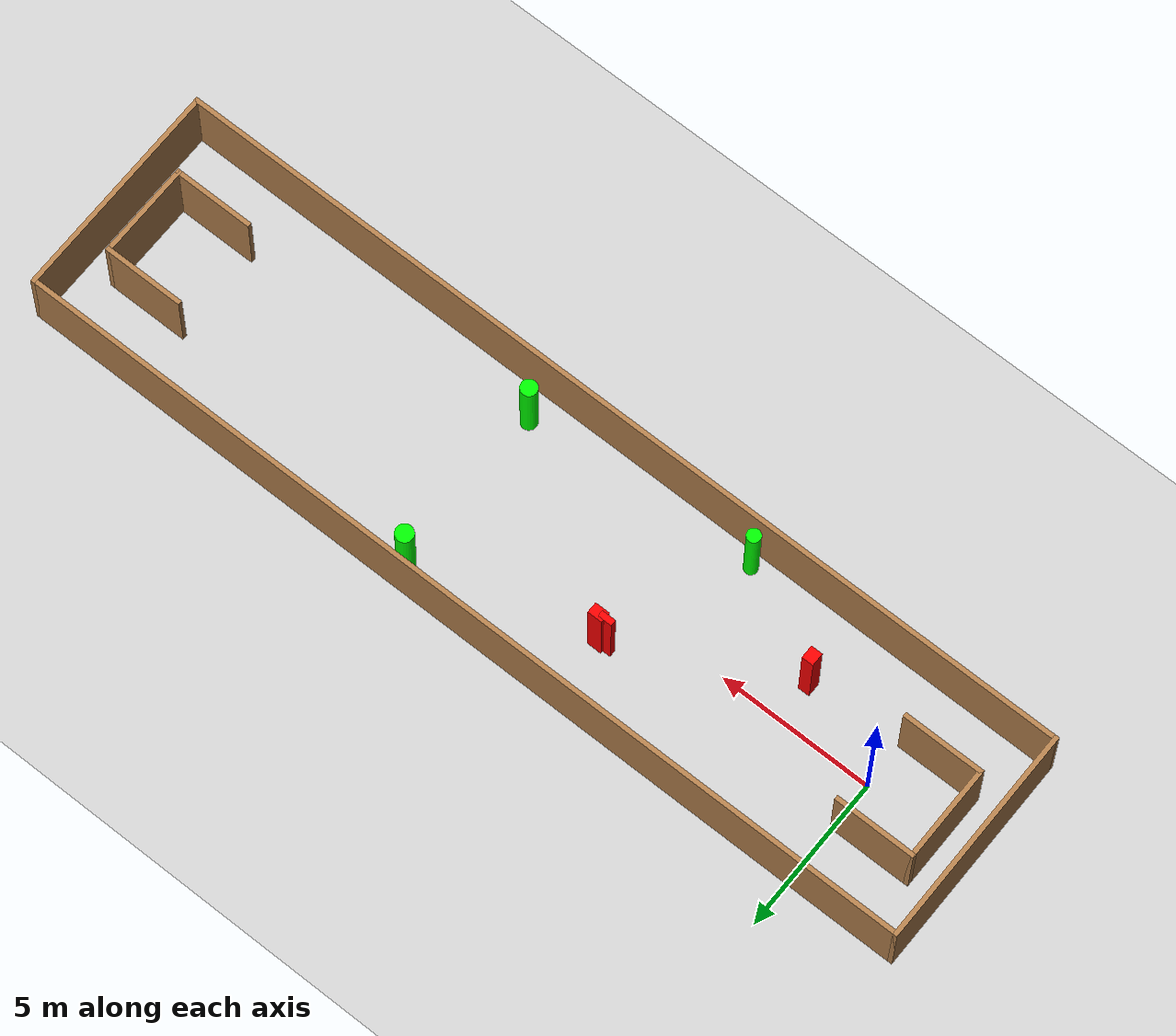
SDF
<sdf version="1.7">
 <world name="default">
  <light name="sun" type="directional">
   <pose>0 0 10 0 -0 0</pose>
   <diffuse>0.8 0.8 0.8 1</diffuse>
   <specular>0.2 0.2 0.2 1</specular>
   <attenuation>
    <range>1000</range>
    <constant>0.9</constant>
    <linear>0.01</linear>
    <quadratic>0.001</quadratic>
   </attenuation>
   <direction>-0.5 0.1 -0.9</direction>
   <spot><inner_angle>0</inner_angle><outer_angle>0</outer_angle><falloff>0</falloff></spot>
  </light>
  <model name="ground_plane">
   <static>1</static>
   <link name="link">
    <collision name="collision">
     <geometry><plane><normal>0 0 1</normal><size>100 100</size></plane></geometry>
     <surface>
      <contact><collide_bitmask>65535</collide_bitmask></contact>
      <friction><ode><mu>100</mu><mu2>50</mu2></ode></friction>
     </surface>
    </collision>
    <visual name="visual">
     <cast_shadows>0</cast_shadows>
     <geometry><plane><normal>0 0 1</normal><size>100 100</size></plane></geometry>
     <material>
      <script><uri>file://media/materials/scripts/gazebo.material</uri><name>Gazebo/Grey</name></script>
     </material>
    </visual>
   </link>
  </model>
  <gravity>0 0 -9.8</gravity>
  <magnetic_field>6e-06 2.3e-05 -4.2e-05</magnetic_field>
  <atmosphere type="adiabatic"/>
  <physics type="ode">
   <max_step_size>0.001</max_step_size>
   <real_time_factor>1</real_time_factor>
   <real_time_update_rate>1000</real_time_update_rate>
  </physics>
  <scene><ambient>0.4 0.4 0.4 1</ambient><background>0.7 0.7 0.7 1</background><shadows>1</shadows></scene>
  <spherical_coordinates>
   <surface_model>EARTH_WGS84</surface_model>
   <latitude_deg>0</latitude_deg>
   <longitude_deg>0</longitude_deg>
   <elevation>0</elevation>
   <heading_deg>0</heading_deg>
  </spherical_coordinates>
  <model name="my_base_walls">
   <link name="Wall_0">
    <collision name="Wall_0_Collision">
     <geometry><box><size>7.15 0.15 2.5</size></box></geometry>
     <pose>0 0 1.25 0 -0 0</pose>
    </collision>
    <visual name="Wall_0_Visual">
     <pose>0 0 1.25 0 -0 0</pose>
     <geometry><box><size>7.15 0.15 2.5</size></box></geometry>
     <material>
      <script><uri>file://media/materials/scripts/gazebo.material</uri><name>Gazebo/Wood</name></script>
      <ambient>1 1 1 1</ambient>
     </material>
     <meta><layer>0</layer></meta>
    </visual>
    <pose>-15 0 0 0 -0 1.5708</pose>
   </link>
   <link name="Wall_10">
    <collision name="Wall_10_Collision">
     <geometry><box><size>2.65 0.15 2.5</size></box></geometry>
     <pose>0 0 1.25 0 -0 0</pose>
    </collision>
    <visual name="Wall_10_Visual">
     <pose>0 0 1.25 0 -0 0</pose>
     <geometry><box><size>2.65 0.15 2.5</size></box></geometry>
     <material>
      <script><uri>file://media/materials/scripts/gazebo.material</uri><name>Gazebo/Wood</name></script>
      <ambient>1 1 1 1</ambient>
     </material>
     <meta><layer>0</layer></meta>
    </visual>
    <pose>-12.75 -1.5 0 0 -0 0</pose>
   </link>
   <link name="Wall_12">
    <collision name="Wall_12_Collision">
     <geometry><box><size>2.65 0.15 2.5</size></box></geometry>
     <pose>0 0 1.25 0 -0 0</pose>
    </collision>
    <visual name="Wall_12_Visual">
     <pose>0 0 1.25 0 -0 0</pose>
     <geometry><box><size>2.65 0.15 2.5</size></box></geometry>
     <material>
      <script><uri>file://media/materials/scripts/gazebo.material</uri><name>Gazebo/Wood</name></script>
      <ambient>1 1 1 1</ambient>
     </material>
     <meta><layer>0</layer></meta>
    </visual>
    <pose>-12.75 1.5 0 0 -0 0</pose>
   </link>
   <link name="Wall_14">
    <collision name="Wall_14_Collision">
     <geometry><box><size>3.15 0.15 2.5</size></box></geometry>
     <pose>0 0 1.25 0 -0 0</pose>
    </collision>
    <visual name="Wall_14_Visual">
     <pose>0 0 1.25 0 -0 0</pose>
     <geometry><box><size>3.15 0.15 2.5</size></box></geometry>
     <material>
      <script><uri>file://media/materials/scripts/gazebo.material</uri><name>Gazebo/Wood</name></script>
      <ambient>1 1 1 1</ambient>
     </material>
     <meta><layer>0</layer></meta>
    </visual>
    <pose>14 0 0 0 -0 -1.5708</pose>
   </link>
   <link name="Wall_15">
    <collision name="Wall_15_Collision">
     <geometry><box><size>2.65 0.15 2.5</size></box></geometry>
     <pose>0 0 1.25 0 -0 0</pose>
    </collision>
    <visual name="Wall_15_Visual">
     <pose>0 0 1.25 0 -0 0</pose>
     <geometry><box><size>2.65 0.15 2.5</size></box></geometry>
     <material>
      <script><uri>file://media/materials/scripts/gazebo.material</uri><name>Gazebo/Wood</name></script>
      <ambient>1 1 1 1</ambient>
     </material>
     <meta><layer>0</layer></meta>
    </visual>
    <pose>12.75 -1.5 0 0 -0 3.14159</pose>
   </link>
   <link name="Wall_17">
    <collision name="Wall_17_Collision">
     <geometry><box><size>2.65 0.15 2.5</size></box></geometry>
     <pose>0 0 1.25 0 -0 0</pose>
    </collision>
    <visual name="Wall_17_Visual">
     <pose>0 0 1.25 0 -0 0</pose>
     <geometry><box><size>2.65 0.15 2.5</size></box></geometry>
     <material>
      <script><uri>file://media/materials/scripts/gazebo.material</uri><name>Gazebo/Wood</name></script>
      <ambient>1 1 1 1</ambient>
     </material>
     <meta><layer>0</layer></meta>
    </visual>
    <pose>12.75 1.5 0 0 -0 3.14159</pose>
   </link>
   <link name="Wall_2">
    <collision name="Wall_2_Collision">
     <geometry><box><size>30.15 0.15 2.5</size></box></geometry>
     <pose>0 0 1.25 0 -0 0</pose>
    </collision>
    <visual name="Wall_2_Visual">
     <pose>0 0 1.25 0 -0 0</pose>
     <geometry><box><size>30.15 0.15 2.5</size></box></geometry>
     <material>
      <script><uri>file://media/materials/scripts/gazebo.material</uri><name>Gazebo/Wood</name></script>
      <ambient>1 1 1 1</ambient>
     </material>
     <meta><layer>0</layer></meta>
    </visual>
    <pose>-0 -3.5 0 0 -0 0</pose>
   </link>
   <link name="Wall_4">
    <collision name="Wall_4_Collision">
     <geometry><box><size>30.15 0.15 2.5</size></box></geometry>
     <pose>0 0 1.25 0 -0 0</pose>
    </collision>
    <visual name="Wall_4_Visual">
     <pose>0 0 1.25 0 -0 0</pose>
     <geometry><box><size>30.15 0.15 2.5</size></box></geometry>
     <material>
      <script><uri>file://media/materials/scripts/gazebo.material</uri><name>Gazebo/Wood</name></script>
      <ambient>1 1 1 1</ambient>
     </material>
     <meta><layer>0</layer></meta>
    </visual>
    <pose>-0 3.5 0 0 -0 0</pose>
   </link>
   <link name="Wall_6">
    <collision name="Wall_6_Collision">
     <geometry><box><size>7.15 0.15 2.5</size></box></geometry>
     <pose>0 0 1.25 0 -0 0</pose>
    </collision>
    <visual name="Wall_6_Visual">
     <pose>0 0 1.25 0 -0 0</pose>
     <geometry><box><size>7.15 0.15 2.5</size></box></geometry>
     <material>
      <script><uri>file://media/materials/scripts/gazebo.material</uri><name>Gazebo/Wood</name></script>
      <ambient>1 1 1 1</ambient>
     </material>
     <meta><layer>0</layer></meta>
    </visual>
    <pose>15 0 0 0 -0 -1.5708</pose>
   </link>
   <link name="Wall_9">
    <collision name="Wall_9_Collision">
     <geometry><box><size>3.15 0.15 2.5</size></box></geometry>
     <pose>0 0 1.25 0 -0 0</pose>
    </collision>
    <visual name="Wall_9_Visual">
     <pose>0 0 1.25 0 -0 0</pose>
     <geometry><box><size>3.15 0.15 2.5</size></box></geometry>
     <material>
      <script><uri>file://media/materials/scripts/gazebo.material</uri><name>Gazebo/Wood</name></script>
      <ambient>1 1 1 1</ambient>
     </material>
     <meta><layer>0</layer></meta>
    </visual>
    <pose>-14 0 0 0 -0 -1.5708</pose>
   </link>
   <static>1</static>
   <pose>11.5 0 0 0 -0 0</pose>
  </model>
  <model name="cylinder1">
   <static>1</static>
   <link name="link">
    <inertial>
     <mass>1</mass>
     <inertia><ixx>0.5</ixx><ixy>0</ixy><ixz>0</ixz><iyy>0.5</iyy><iyz>0</iyz><izz>1</izz></inertia>
    </inertial>
    <collision name="collision">
     <geometry><cylinder><radius>0.26285597948355566</radius><length>2.5</length></cylinder></geometry>
    </collision>
    <visual name="visual">
     <geometry><cylinder><radius>0.26285597948355566</radius><length>2.5</length></cylinder></geometry>
     <material>
      <ambient>0 1 0 1</ambient>
      <diffuse>0 1 0 1</diffuse>
      <specular>0.1 0.1 0.1 1</specular>
      <emissive>0 0 0 0</emissive>
     </material>
    </visual>
   </link>
   <pose>13.851594478252835 -2.554789474351678 1.25 0 0 0</pose>
  </model>
  <model name="cylinder2">
   <static>1</static>
   <link name="link">
    <inertial>
     <mass>1</mass>
     <inertia><ixx>0.5</ixx><ixy>0</ixy><ixz>0</ixz><iyy>0.5</iyy><iyz>0</iyz><izz>1</izz></inertia>
    </inertial>
    <collision name="collision">
     <geometry><cylinder><radius>0.2826864143280278</radius><length>2.5</length></cylinder></geometry>
    </collision>
    <visual name="visual">
     <geometry><cylinder><radius>0.2826864143280278</radius><length>2.5</length></cylinder></geometry>
     <material>
      <ambient>0 1 0 1</ambient>
      <diffuse>0 1 0 1</diffuse>
      <specular>0.1 0.1 0.1 1</specular>
      <emissive>0 0 0 0</emissive>
     </material>
    </visual>
   </link>
   <pose>13.813198162233808 2.8823424021110373 1.25 0 0 0</pose>
  </model>
  <model name="cylinder3">
   <static>1</static>
   <link name="link">
    <inertial>
     <mass>1</mass>
     <inertia><ixx>0.5</ixx><ixy>0</ixy><ixz>0</ixz><iyy>0.5</iyy><iyz>0</iyz><izz>1</izz></inertia>
    </inertial>
    <collision name="collision">
     <geometry><cylinder><radius>0.21803392972947175</radius><length>2.5</length></cylinder></geometry>
    </collision>
    <visual name="visual">
     <geometry><cylinder><radius>0.21803392972947175</radius><length>2.5</length></cylinder></geometry>
     <material>
      <ambient>0 1 0 1</ambient>
      <diffuse>0 1 0 1</diffuse>
      <specular>0.1 0.1 0.1 1</specular>
      <emissive>0 0 0 0</emissive>
     </material>
    </visual>
   </link>
   <pose>6.381995908068673 -3.0046967298930958 1.25 0 0 0</pose>
  </model>
  <model name="box1">
   <static>1</static>
   <link name="link">
    <inertial>
     <mass>1</mass>
     <inertia><ixx>0.083</ixx><ixy>0</ixy><ixz>0</ixz><iyy>0.083</iyy><iyz>0</iyz><izz>0.083</izz></inertia>
    </inertial>
    <collision name="collision">
     <geometry><box><size>0.4780092837156963 0.3460863944987224 2.5</size></box></geometry>
    </collision>
    <visual name="visual">
     <geometry><box><size>0.4780092837156963 0.3460863944987224 2.5</size></box></geometry>
     <material>
      <ambient>1 0 0 1</ambient>
      <diffuse>1 0 0 1</diffuse>
      <specular>0.1 0.1 0.1 1</specular>
      <emissive>0 0 0 0</emissive>
     </material>
    </visual>
    <sensor name="my_contact" type="contact">
     <contact><collision>box_collision</collision><topic>__default_topic__</topic></contact>
    </sensor>
   </link>
   <pose>8.27923430243931 1.3714051720552085 1.25 0 0 0</pose>
  </model>
  <model name="box2">
   <static>1</static>
   <link name="link">
    <inertial>
     <mass>1</mass>
     <inertia><ixx>0.083</ixx><ixy>0</ixy><ixz>0</ixz><iyy>0.083</iyy><iyz>0</iyz><izz>0.083</izz></inertia>
    </inertial>
    <collision name="collision">
     <geometry><box><size>0.4601718038896976 0.20134936272684587 2.5</size></box></geometry>
    </collision>
    <visual name="visual">
     <geometry><box><size>0.4601718038896976 0.20134936272684587 2.5</size></box></geometry>
     <material>
      <ambient>1 0 0 1</ambient>
      <diffuse>1 0 0 1</diffuse>
      <specular>0.1 0.1 0.1 1</specular>
      <emissive>0 0 0 0</emissive>
     </material>
    </visual>
    <sensor name="my_contact" type="contact">
     <contact><collision>box_collision</collision><topic>__default_topic__</topic></contact>
    </sensor>
   </link>
   <pose>8.008705752145728 1.357603974264049 1.25 0 0 0</pose>
  </model>
  <model name="box3">
   <static>1</static>
   <link name="link">
    <inertial>
     <mass>1</mass>
     <inertia><ixx>0.083</ixx><ixy>0</ixy><ixz>0</ixz><iyy>0.083</iyy><iyz>0</iyz><izz>0.083</izz></inertia>
    </inertial>
    <collision name="collision">
     <geometry><box><size>0.37449832526387283 0.42805568187805476 2.5</size></box></geometry>
    </collision>
    <visual name="visual">
     <geometry><box><size>0.37449832526387283 0.42805568187805476 2.5</size></box></geometry>
     <material>
      <ambient>1 0 0 1</ambient>
      <diffuse>1 0 0 1</diffuse>
      <specular>0.1 0.1 0.1 1</specular>
      <emissive>0 0 0 0</emissive>
     </material>
    </visual>
    <sensor name="my_contact" type="contact">
     <contact><collision>box_collision</collision><topic>__default_topic__</topic></contact>
    </sensor>
   </link>
   <pose>3.0253339845534146 -1.2642963176816053 1.25 0 0 0</pose>
  </model>
 </world>
</sdf>
